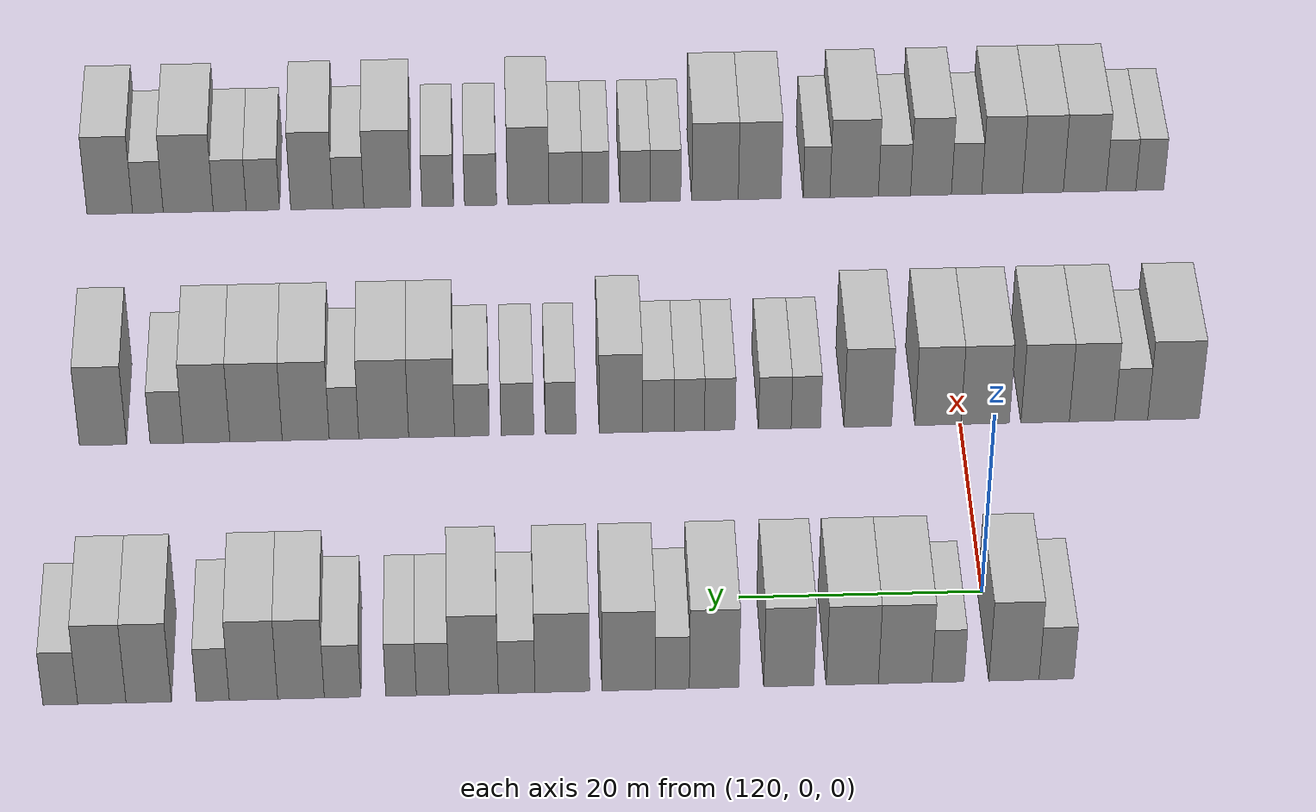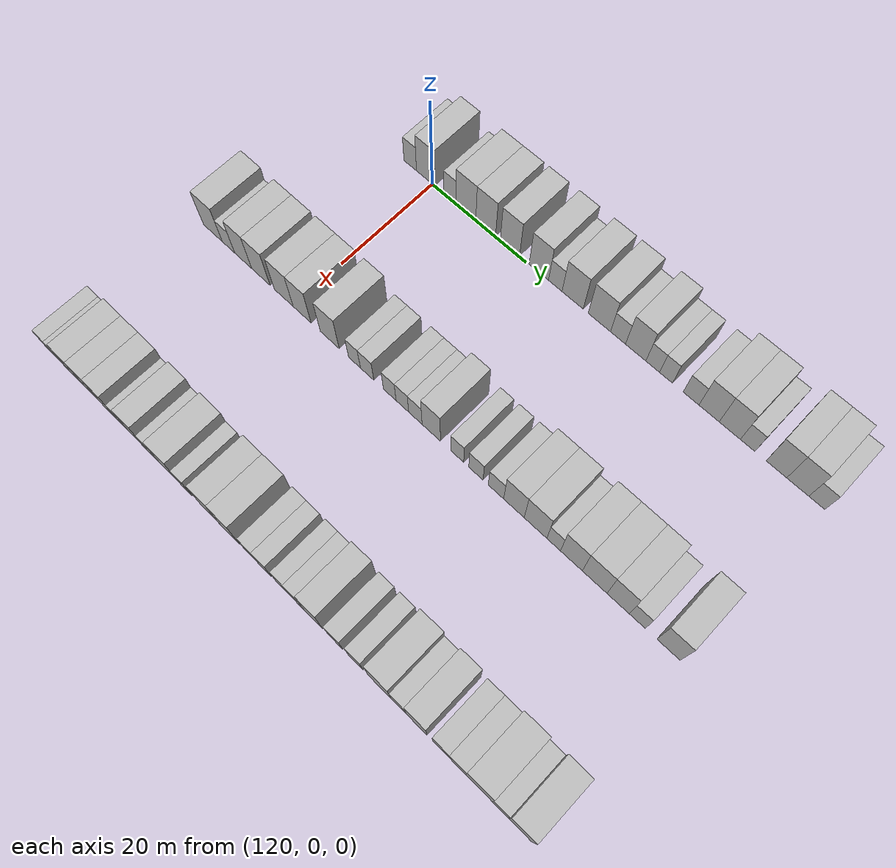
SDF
<sdf version="1.6">
 <world name="default">
  <model name="building_791">
   <static>1</static>
   <pose>115.0000 -5.0770 0 0.000000 0.000000 0.000000</pose>
   <link name="link">
    <pose>0 0 3.00 0 0 0</pose>
    <collision name="collision"><geometry><box><size>10.0000 2.8023 6.0000</size></box></geometry></collision>
    <visual name="visual">
     <cast_shadows>0</cast_shadows>
     <geometry><box><size>10.0000 2.8023 6.0000</size></box></geometry>
     <material>
      <script>
       <uri>model://HANNAS_wall/materials/scripts</uri>
       <uri>model://HANNAS_wall/materials/textures</uri>
       <name>vrc/HANNAS_wall</name>
      </script>
     </material>
    </visual>
   </link>
  </model>
  <model name="building_792">
   <static>1</static>
   <pose>115.0000 -1.6470 0 0.000000 0.000000 0.000000</pose>
   <link name="link">
    <pose>0 0 4.50 0 0 0</pose>
    <collision name="collision"><geometry><box><size>10.0000 4.0577 9.0000</size></box></geometry></collision>
    <visual name="visual">
     <cast_shadows>0</cast_shadows>
     <geometry><box><size>10.0000 4.0577 9.0000</size></box></geometry>
     <material>
      <script>
       <uri>model://HANNAS_wall/materials/scripts</uri>
       <uri>model://HANNAS_wall/materials/textures</uri>
       <name>vrc/HANNAS_wall</name>
      </script>
     </material>
    </visual>
   </link>
  </model>
  <model name="building_793">
   <static>1</static>
   <pose>115.0000 3.6811 0 0.000000 0.000000 0.000000</pose>
   <link name="link">
    <pose>0 0 3.00 0 0 0</pose>
    <collision name="collision"><geometry><box><size>10.0000 2.5985 6.0000</size></box></geometry></collision>
    <visual name="visual">
     <cast_shadows>0</cast_shadows>
     <geometry><box><size>10.0000 2.5985 6.0000</size></box></geometry>
     <material>
      <script>
       <uri>model://HANNAS_wall/materials/scripts</uri>
       <uri>model://HANNAS_wall/materials/textures</uri>
       <name>vrc/HANNAS_wall</name>
      </script>
     </material>
    </visual>
   </link>
  </model>
  <model name="building_794">
   <static>1</static>
   <pose>115.0000 7.1402 0 0.000000 0.000000 0.000000</pose>
   <link name="link">
    <pose>0 0 4.50 0 0 0</pose>
    <collision name="collision"><geometry><box><size>10.0000 4.3196 9.0000</size></box></geometry></collision>
    <visual name="visual">
     <cast_shadows>0</cast_shadows>
     <geometry><box><size>10.0000 4.3196 9.0000</size></box></geometry>
     <material>
      <script>
       <uri>model://HANNAS_wall/materials/scripts</uri>
       <uri>model://HANNAS_wall/materials/textures</uri>
       <name>vrc/HANNAS_wall</name>
      </script>
     </material>
    </visual>
   </link>
  </model>
  <model name="building_795">
   <static>1</static>
   <pose>115.0000 11.4047 0 0.000000 0.000000 0.000000</pose>
   <link name="link">
    <pose>0 0 4.50 0 0 0</pose>
    <collision name="collision"><geometry><box><size>10.0000 4.2093 9.0000</size></box></geometry></collision>
    <visual name="visual">
     <cast_shadows>0</cast_shadows>
     <geometry><box><size>10.0000 4.2093 9.0000</size></box></geometry>
     <material>
      <script>
       <uri>model://HANNAS_wall/materials/scripts</uri>
       <uri>model://HANNAS_wall/materials/textures</uri>
       <name>vrc/HANNAS_wall</name>
      </script>
     </material>
    </visual>
   </link>
  </model>
  <model name="building_796">
   <static>1</static>
   <pose>115.0000 16.5263 0 0.000000 0.000000 0.000000</pose>
   <link name="link">
    <pose>0 0 4.50 0 0 0</pose>
    <collision name="collision"><geometry><box><size>10.0000 4.0339 9.0000</size></box></geometry></collision>
    <visual name="visual">
     <cast_shadows>0</cast_shadows>
     <geometry><box><size>10.0000 4.0339 9.0000</size></box></geometry>
     <material>
      <script>
       <uri>model://HANNAS_wall/materials/scripts</uri>
       <uri>model://HANNAS_wall/materials/textures</uri>
       <name>vrc/HANNAS_wall</name>
      </script>
     </material>
    </visual>
   </link>
  </model>
  <model name="building_797">
   <static>1</static>
   <pose>115.0000 22.5402 0 0.000000 0.000000 0.000000</pose>
   <link name="link">
    <pose>0 0 4.50 0 0 0</pose>
    <collision name="collision"><geometry><box><size>10.0000 3.9940 9.0000</size></box></geometry></collision>
    <visual name="visual">
     <cast_shadows>0</cast_shadows>
     <geometry><box><size>10.0000 3.9940 9.0000</size></box></geometry>
     <material>
      <script>
       <uri>model://HANNAS_wall/materials/scripts</uri>
       <uri>model://HANNAS_wall/materials/textures</uri>
       <name>vrc/HANNAS_wall</name>
      </script>
     </material>
    </visual>
   </link>
  </model>
  <model name="building_798">
   <static>1</static>
   <pose>115.0000 25.9160 0 0.000000 0.000000 0.000000</pose>
   <link name="link">
    <pose>0 0 3.00 0 0 0</pose>
    <collision name="collision"><geometry><box><size>10.0000 2.7576 6.0000</size></box></geometry></collision>
    <visual name="visual">
     <cast_shadows>0</cast_shadows>
     <geometry><box><size>10.0000 2.7576 6.0000</size></box></geometry>
     <material>
      <script>
       <uri>model://HANNAS_wall/materials/scripts</uri>
       <uri>model://HANNAS_wall/materials/textures</uri>
       <name>vrc/HANNAS_wall</name>
      </script>
     </material>
    </visual>
   </link>
  </model>
  <model name="building_799">
   <static>1</static>
   <pose>115.0000 29.4288 0 0.000000 0.000000 0.000000</pose>
   <link name="link">
    <pose>0 0 4.50 0 0 0</pose>
    <collision name="collision"><geometry><box><size>10.0000 4.2680 9.0000</size></box></geometry></collision>
    <visual name="visual">
     <cast_shadows>0</cast_shadows>
     <geometry><box><size>10.0000 4.2680 9.0000</size></box></geometry>
     <material>
      <script>
       <uri>model://HANNAS_wall/materials/scripts</uri>
       <uri>model://HANNAS_wall/materials/textures</uri>
       <name>vrc/HANNAS_wall</name>
      </script>
     </material>
    </visual>
   </link>
  </model>
  <model name="building_800">
   <static>1</static>
   <pose>115.0000 34.7591 0 0.000000 0.000000 0.000000</pose>
   <link name="link">
    <pose>0 0 4.50 0 0 0</pose>
    <collision name="collision"><geometry><box><size>10.0000 4.3925 9.0000</size></box></geometry></collision>
    <visual name="visual">
     <cast_shadows>0</cast_shadows>
     <geometry><box><size>10.0000 4.3925 9.0000</size></box></geometry>
     <material>
      <script>
       <uri>model://HANNAS_wall/materials/scripts</uri>
       <uri>model://HANNAS_wall/materials/textures</uri>
       <name>vrc/HANNAS_wall</name>
      </script>
     </material>
    </visual>
   </link>
  </model>
  <model name="building_801">
   <static>1</static>
   <pose>115.0000 38.4257 0 0.000000 0.000000 0.000000</pose>
   <link name="link">
    <pose>0 0 3.00 0 0 0</pose>
    <collision name="collision"><geometry><box><size>10.0000 2.9408 6.0000</size></box></geometry></collision>
    <visual name="visual">
     <cast_shadows>0</cast_shadows>
     <geometry><box><size>10.0000 2.9408 6.0000</size></box></geometry>
     <material>
      <script>
       <uri>model://HANNAS_wall/materials/scripts</uri>
       <uri>model://HANNAS_wall/materials/textures</uri>
       <name>vrc/HANNAS_wall</name>
      </script>
     </material>
    </visual>
   </link>
  </model>
  <model name="building_802">
   <static>1</static>
   <pose>115.0000 41.8705 0 0.000000 0.000000 0.000000</pose>
   <link name="link">
    <pose>0 0 4.50 0 0 0</pose>
    <collision name="collision"><geometry><box><size>10.0000 3.9487 9.0000</size></box></geometry></collision>
    <visual name="visual">
     <cast_shadows>0</cast_shadows>
     <geometry><box><size>10.0000 3.9487 9.0000</size></box></geometry>
     <material>
      <script>
       <uri>model://HANNAS_wall/materials/scripts</uri>
       <uri>model://HANNAS_wall/materials/textures</uri>
       <name>vrc/HANNAS_wall</name>
      </script>
     </material>
    </visual>
   </link>
  </model>
  <model name="building_803">
   <static>1</static>
   <pose>115.0000 45.1600 0 0.000000 0.000000 0.000000</pose>
   <link name="link">
    <pose>0 0 3.00 0 0 0</pose>
    <collision name="collision"><geometry><box><size>10.0000 2.6303 6.0000</size></box></geometry></collision>
    <visual name="visual">
     <cast_shadows>0</cast_shadows>
     <geometry><box><size>10.0000 2.6303 6.0000</size></box></geometry>
     <material>
      <script>
       <uri>model://HANNAS_wall/materials/scripts</uri>
       <uri>model://HANNAS_wall/materials/textures</uri>
       <name>vrc/HANNAS_wall</name>
      </script>
     </material>
    </visual>
   </link>
  </model>
  <model name="building_804">
   <static>1</static>
   <pose>115.0000 47.7001 0 0.000000 0.000000 0.000000</pose>
   <link name="link">
    <pose>0 0 3.00 0 0 0</pose>
    <collision name="collision"><geometry><box><size>10.0000 2.4500 6.0000</size></box></geometry></collision>
    <visual name="visual">
     <cast_shadows>0</cast_shadows>
     <geometry><box><size>10.0000 2.4500 6.0000</size></box></geometry>
     <material>
      <script>
       <uri>model://HANNAS_wall/materials/scripts</uri>
       <uri>model://HANNAS_wall/materials/textures</uri>
       <name>vrc/HANNAS_wall</name>
      </script>
     </material>
    </visual>
   </link>
  </model>
  <model name="building_805">
   <static>1</static>
   <pose>115.0000 52.3946 0 0.000000 0.000000 0.000000</pose>
   <link name="link">
    <pose>0 0 3.00 0 0 0</pose>
    <collision name="collision"><geometry><box><size>10.0000 2.9389 6.0000</size></box></geometry></collision>
    <visual name="visual">
     <cast_shadows>0</cast_shadows>
     <geometry><box><size>10.0000 2.9389 6.0000</size></box></geometry>
     <material>
      <script>
       <uri>model://HANNAS_wall/materials/scripts</uri>
       <uri>model://HANNAS_wall/materials/textures</uri>
       <name>vrc/HANNAS_wall</name>
      </script>
     </material>
    </visual>
   </link>
  </model>
  <model name="building_806">
   <static>1</static>
   <pose>115.0000 55.7344 0 0.000000 0.000000 0.000000</pose>
   <link name="link">
    <pose>0 0 4.50 0 0 0</pose>
    <collision name="collision"><geometry><box><size>10.0000 3.7406 9.0000</size></box></geometry></collision>
    <visual name="visual">
     <cast_shadows>0</cast_shadows>
     <geometry><box><size>10.0000 3.7406 9.0000</size></box></geometry>
     <material>
      <script>
       <uri>model://HANNAS_wall/materials/scripts</uri>
       <uri>model://HANNAS_wall/materials/textures</uri>
       <name>vrc/HANNAS_wall</name>
      </script>
     </material>
    </visual>
   </link>
  </model>
  <model name="building_807">
   <static>1</static>
   <pose>115.0000 59.5400 0 0.000000 0.000000 0.000000</pose>
   <link name="link">
    <pose>0 0 4.50 0 0 0</pose>
    <collision name="collision"><geometry><box><size>10.0000 3.8705 9.0000</size></box></geometry></collision>
    <visual name="visual">
     <cast_shadows>0</cast_shadows>
     <geometry><box><size>10.0000 3.8705 9.0000</size></box></geometry>
     <material>
      <script>
       <uri>model://HANNAS_wall/materials/scripts</uri>
       <uri>model://HANNAS_wall/materials/textures</uri>
       <name>vrc/HANNAS_wall</name>
      </script>
     </material>
    </visual>
   </link>
  </model>
  <model name="building_808">
   <static>1</static>
   <pose>115.0000 62.7925 0 0.000000 0.000000 0.000000</pose>
   <link name="link">
    <pose>0 0 3.00 0 0 0</pose>
    <collision name="collision"><geometry><box><size>10.0000 2.6346 6.0000</size></box></geometry></collision>
    <visual name="visual">
     <cast_shadows>0</cast_shadows>
     <geometry><box><size>10.0000 2.6346 6.0000</size></box></geometry>
     <material>
      <script>
       <uri>model://HANNAS_wall/materials/scripts</uri>
       <uri>model://HANNAS_wall/materials/textures</uri>
       <name>vrc/HANNAS_wall</name>
      </script>
     </material>
    </visual>
   </link>
  </model>
  <model name="building_809">
   <static>1</static>
   <pose>115.0000 67.9265 0 0.000000 0.000000 0.000000</pose>
   <link name="link">
    <pose>0 0 4.50 0 0 0</pose>
    <collision name="collision"><geometry><box><size>10.0000 3.6334 9.0000</size></box></geometry></collision>
    <visual name="visual">
     <cast_shadows>0</cast_shadows>
     <geometry><box><size>10.0000 3.6334 9.0000</size></box></geometry>
     <material>
      <script>
       <uri>model://HANNAS_wall/materials/scripts</uri>
       <uri>model://HANNAS_wall/materials/textures</uri>
       <name>vrc/HANNAS_wall</name>
      </script>
     </material>
    </visual>
   </link>
  </model>
  <model name="building_810">
   <static>1</static>
   <pose>115.0000 71.6758 0 0.000000 0.000000 0.000000</pose>
   <link name="link">
    <pose>0 0 4.50 0 0 0</pose>
    <collision name="collision"><geometry><box><size>10.0000 3.8652 9.0000</size></box></geometry></collision>
    <visual name="visual">
     <cast_shadows>0</cast_shadows>
     <geometry><box><size>10.0000 3.8652 9.0000</size></box></geometry>
     <material>
      <script>
       <uri>model://HANNAS_wall/materials/scripts</uri>
       <uri>model://HANNAS_wall/materials/textures</uri>
       <name>vrc/HANNAS_wall</name>
      </script>
     </material>
    </visual>
   </link>
  </model>
  <model name="building_811">
   <static>1</static>
   <pose>115.0000 74.9963 0 0.000000 0.000000 0.000000</pose>
   <link name="link">
    <pose>0 0 3.00 0 0 0</pose>
    <collision name="collision"><geometry><box><size>10.0000 2.7758 6.0000</size></box></geometry></collision>
    <visual name="visual">
     <cast_shadows>0</cast_shadows>
     <geometry><box><size>10.0000 2.7758 6.0000</size></box></geometry>
     <material>
      <script>
       <uri>model://HANNAS_wall/materials/scripts</uri>
       <uri>model://HANNAS_wall/materials/textures</uri>
       <name>vrc/HANNAS_wall</name>
      </script>
     </material>
    </visual>
   </link>
  </model>
  <model name="building_1021">
   <static>1</static>
   <pose>145.0000 -18.2331 0 0.000000 0.000000 0.000000</pose>
   <link name="link">
    <pose>0 0 4.50 0 0 0</pose>
    <collision name="collision"><geometry><box><size>10.0000 4.4233 9.0000</size></box></geometry></collision>
    <visual name="visual">
     <cast_shadows>0</cast_shadows>
     <geometry><box><size>10.0000 4.4233 9.0000</size></box></geometry>
     <material>
      <script>
       <uri>model://HANNAS_wall/materials/scripts</uri>
       <uri>model://HANNAS_wall/materials/textures</uri>
       <name>vrc/HANNAS_wall</name>
      </script>
     </material>
    </visual>
   </link>
  </model>
  <model name="building_1022">
   <static>1</static>
   <pose>145.0000 -14.6008 0 0.000000 0.000000 0.000000</pose>
   <link name="link">
    <pose>0 0 3.00 0 0 0</pose>
    <collision name="collision"><geometry><box><size>10.0000 2.8412 6.0000</size></box></geometry></collision>
    <visual name="visual">
     <cast_shadows>0</cast_shadows>
     <geometry><box><size>10.0000 2.8412 6.0000</size></box></geometry>
     <material>
      <script>
       <uri>model://HANNAS_wall/materials/scripts</uri>
       <uri>model://HANNAS_wall/materials/textures</uri>
       <name>vrc/HANNAS_wall</name>
      </script>
     </material>
    </visual>
   </link>
  </model>
  <model name="building_1023">
   <static>1</static>
   <pose>145.0000 -11.2451 0 0.000000 0.000000 0.000000</pose>
   <link name="link">
    <pose>0 0 4.50 0 0 0</pose>
    <collision name="collision"><geometry><box><size>10.0000 3.8701 9.0000</size></box></geometry></collision>
    <visual name="visual">
     <cast_shadows>0</cast_shadows>
     <geometry><box><size>10.0000 3.8701 9.0000</size></box></geometry>
     <material>
      <script>
       <uri>model://HANNAS_wall/materials/scripts</uri>
       <uri>model://HANNAS_wall/materials/textures</uri>
       <name>vrc/HANNAS_wall</name>
      </script>
     </material>
    </visual>
   </link>
  </model>
  <model name="building_1024">
   <static>1</static>
   <pose>145.0000 -7.2359 0 0.000000 0.000000 0.000000</pose>
   <link name="link">
    <pose>0 0 4.50 0 0 0</pose>
    <collision name="collision"><geometry><box><size>10.0000 4.1483 9.0000</size></box></geometry></collision>
    <visual name="visual">
     <cast_shadows>0</cast_shadows>
     <geometry><box><size>10.0000 4.1483 9.0000</size></box></geometry>
     <material>
      <script>
       <uri>model://HANNAS_wall/materials/scripts</uri>
       <uri>model://HANNAS_wall/materials/textures</uri>
       <name>vrc/HANNAS_wall</name>
      </script>
     </material>
    </visual>
   </link>
  </model>
  <model name="building_1025">
   <static>1</static>
   <pose>145.0000 -2.0886 0 0.000000 0.000000 0.000000</pose>
   <link name="link">
    <pose>0 0 4.50 0 0 0</pose>
    <collision name="collision"><geometry><box><size>10.0000 4.1463 9.0000</size></box></geometry></collision>
    <visual name="visual">
     <cast_shadows>0</cast_shadows>
     <geometry><box><size>10.0000 4.1463 9.0000</size></box></geometry>
     <material>
      <script>
       <uri>model://HANNAS_wall/materials/scripts</uri>
       <uri>model://HANNAS_wall/materials/textures</uri>
       <name>vrc/HANNAS_wall</name>
      </script>
     </material>
    </visual>
   </link>
  </model>
  <model name="building_1026">
   <static>1</static>
   <pose>145.0000 1.9492 0 0.000000 0.000000 0.000000</pose>
   <link name="link">
    <pose>0 0 4.50 0 0 0</pose>
    <collision name="collision"><geometry><box><size>10.0000 3.9294 9.0000</size></box></geometry></collision>
    <visual name="visual">
     <cast_shadows>0</cast_shadows>
     <geometry><box><size>10.0000 3.9294 9.0000</size></box></geometry>
     <material>
      <script>
       <uri>model://HANNAS_wall/materials/scripts</uri>
       <uri>model://HANNAS_wall/materials/textures</uri>
       <name>vrc/HANNAS_wall</name>
      </script>
     </material>
    </visual>
   </link>
  </model>
  <model name="building_1027">
   <static>1</static>
   <pose>145.0000 7.9503 0 0.000000 0.000000 0.000000</pose>
   <link name="link">
    <pose>0 0 4.50 0 0 0</pose>
    <collision name="collision"><geometry><box><size>10.0000 4.0727 9.0000</size></box></geometry></collision>
    <visual name="visual">
     <cast_shadows>0</cast_shadows>
     <geometry><box><size>10.0000 4.0727 9.0000</size></box></geometry>
     <material>
      <script>
       <uri>model://HANNAS_wall/materials/scripts</uri>
       <uri>model://HANNAS_wall/materials/textures</uri>
       <name>vrc/HANNAS_wall</name>
      </script>
     </material>
    </visual>
   </link>
  </model>
  <model name="building_1028">
   <static>1</static>
   <pose>145.0000 13.2446 0 0.000000 0.000000 0.000000</pose>
   <link name="link">
    <pose>0 0 3.00 0 0 0</pose>
    <collision name="collision"><geometry><box><size>10.0000 2.5161 6.0000</size></box></geometry></collision>
    <visual name="visual">
     <cast_shadows>0</cast_shadows>
     <geometry><box><size>10.0000 2.5161 6.0000</size></box></geometry>
     <material>
      <script>
       <uri>model://HANNAS_wall/materials/scripts</uri>
       <uri>model://HANNAS_wall/materials/textures</uri>
       <name>vrc/HANNAS_wall</name>
      </script>
     </material>
    </visual>
   </link>
  </model>
  <model name="building_1029">
   <static>1</static>
   <pose>145.0000 15.9003 0 0.000000 0.000000 0.000000</pose>
   <link name="link">
    <pose>0 0 3.00 0 0 0</pose>
    <collision name="collision"><geometry><box><size>10.0000 2.7953 6.0000</size></box></geometry></collision>
    <visual name="visual">
     <cast_shadows>0</cast_shadows>
     <geometry><box><size>10.0000 2.7953 6.0000</size></box></geometry>
     <material>
      <script>
       <uri>model://HANNAS_wall/materials/scripts</uri>
       <uri>model://HANNAS_wall/materials/textures</uri>
       <name>vrc/HANNAS_wall</name>
      </script>
     </material>
    </visual>
   </link>
  </model>
  <model name="building_1030">
   <static>1</static>
   <pose>145.0000 20.6039 0 0.000000 0.000000 0.000000</pose>
   <link name="link">
    <pose>0 0 3.00 0 0 0</pose>
    <collision name="collision"><geometry><box><size>10.0000 2.6118 6.0000</size></box></geometry></collision>
    <visual name="visual">
     <cast_shadows>0</cast_shadows>
     <geometry><box><size>10.0000 2.6118 6.0000</size></box></geometry>
     <material>
      <script>
       <uri>model://HANNAS_wall/materials/scripts</uri>
       <uri>model://HANNAS_wall/materials/textures</uri>
       <name>vrc/HANNAS_wall</name>
      </script>
     </material>
    </visual>
   </link>
  </model>
  <model name="building_1031">
   <static>1</static>
   <pose>145.0000 23.1957 0 0.000000 0.000000 0.000000</pose>
   <link name="link">
    <pose>0 0 3.00 0 0 0</pose>
    <collision name="collision"><geometry><box><size>10.0000 2.5719 6.0000</size></box></geometry></collision>
    <visual name="visual">
     <cast_shadows>0</cast_shadows>
     <geometry><box><size>10.0000 2.5719 6.0000</size></box></geometry>
     <material>
      <script>
       <uri>model://HANNAS_wall/materials/scripts</uri>
       <uri>model://HANNAS_wall/materials/textures</uri>
       <name>vrc/HANNAS_wall</name>
      </script>
     </material>
    </visual>
   </link>
  </model>
  <model name="building_1032">
   <static>1</static>
   <pose>145.0000 25.8371 0 0.000000 0.000000 0.000000</pose>
   <link name="link">
    <pose>0 0 3.00 0 0 0</pose>
    <collision name="collision"><geometry><box><size>10.0000 2.7110 6.0000</size></box></geometry></collision>
    <visual name="visual">
     <cast_shadows>0</cast_shadows>
     <geometry><box><size>10.0000 2.7110 6.0000</size></box></geometry>
     <material>
      <script>
       <uri>model://HANNAS_wall/materials/scripts</uri>
       <uri>model://HANNAS_wall/materials/textures</uri>
       <name>vrc/HANNAS_wall</name>
      </script>
     </material>
    </visual>
   </link>
  </model>
  <model name="building_1033">
   <static>1</static>
   <pose>145.0000 29.0301 0 0.000000 0.000000 0.000000</pose>
   <link name="link">
    <pose>0 0 4.50 0 0 0</pose>
    <collision name="collision"><geometry><box><size>10.0000 3.6749 9.0000</size></box></geometry></collision>
    <visual name="visual">
     <cast_shadows>0</cast_shadows>
     <geometry><box><size>10.0000 3.6749 9.0000</size></box></geometry>
     <material>
      <script>
       <uri>model://HANNAS_wall/materials/scripts</uri>
       <uri>model://HANNAS_wall/materials/textures</uri>
       <name>vrc/HANNAS_wall</name>
      </script>
     </material>
    </visual>
   </link>
  </model>
  <model name="building_1034">
   <static>1</static>
   <pose>145.0000 34.1591 0 0.000000 0.000000 0.000000</pose>
   <link name="link">
    <pose>0 0 3.00 0 0 0</pose>
    <collision name="collision"><geometry><box><size>10.0000 2.5832 6.0000</size></box></geometry></collision>
    <visual name="visual">
     <cast_shadows>0</cast_shadows>
     <geometry><box><size>10.0000 2.5832 6.0000</size></box></geometry>
     <material>
      <script>
       <uri>model://HANNAS_wall/materials/scripts</uri>
       <uri>model://HANNAS_wall/materials/textures</uri>
       <name>vrc/HANNAS_wall</name>
      </script>
     </material>
    </visual>
   </link>
  </model>
  <model name="building_1035">
   <static>1</static>
   <pose>145.0000 37.8397 0 0.000000 0.000000 0.000000</pose>
   <link name="link">
    <pose>0 0 3.00 0 0 0</pose>
    <collision name="collision"><geometry><box><size>10.0000 2.7780 6.0000</size></box></geometry></collision>
    <visual name="visual">
     <cast_shadows>0</cast_shadows>
     <geometry><box><size>10.0000 2.7780 6.0000</size></box></geometry>
     <material>
      <script>
       <uri>model://HANNAS_wall/materials/scripts</uri>
       <uri>model://HANNAS_wall/materials/textures</uri>
       <name>vrc/HANNAS_wall</name>
      </script>
     </material>
    </visual>
   </link>
  </model>
  <model name="building_1036">
   <static>1</static>
   <pose>145.0000 41.7129 0 0.000000 0.000000 0.000000</pose>
   <link name="link">
    <pose>0 0 3.00 0 0 0</pose>
    <collision name="collision"><geometry><box><size>10.0000 2.9684 6.0000</size></box></geometry></collision>
    <visual name="visual">
     <cast_shadows>0</cast_shadows>
     <geometry><box><size>10.0000 2.9684 6.0000</size></box></geometry>
     <material>
      <script>
       <uri>model://HANNAS_wall/materials/scripts</uri>
       <uri>model://HANNAS_wall/materials/textures</uri>
       <name>vrc/HANNAS_wall</name>
      </script>
     </material>
    </visual>
   </link>
  </model>
  <model name="building_1037">
   <static>1</static>
   <pose>145.0000 45.1493 0 0.000000 0.000000 0.000000</pose>
   <link name="link">
    <pose>0 0 4.50 0 0 0</pose>
    <collision name="collision"><geometry><box><size>10.0000 3.9045 9.0000</size></box></geometry></collision>
    <visual name="visual">
     <cast_shadows>0</cast_shadows>
     <geometry><box><size>10.0000 3.9045 9.0000</size></box></geometry>
     <material>
      <script>
       <uri>model://HANNAS_wall/materials/scripts</uri>
       <uri>model://HANNAS_wall/materials/textures</uri>
       <name>vrc/HANNAS_wall</name>
      </script>
     </material>
    </visual>
   </link>
  </model>
  <model name="building_1038">
   <static>1</static>
   <pose>145.0000 49.2223 0 0.000000 0.000000 0.000000</pose>
   <link name="link">
    <pose>0 0 4.50 0 0 0</pose>
    <collision name="collision"><geometry><box><size>10.0000 4.2415 9.0000</size></box></geometry></collision>
    <visual name="visual">
     <cast_shadows>0</cast_shadows>
     <geometry><box><size>10.0000 4.2415 9.0000</size></box></geometry>
     <material>
      <script>
       <uri>model://HANNAS_wall/materials/scripts</uri>
       <uri>model://HANNAS_wall/materials/textures</uri>
       <name>vrc/HANNAS_wall</name>
      </script>
     </material>
    </visual>
   </link>
  </model>
  <model name="building_1039">
   <static>1</static>
   <pose>145.0000 52.6000 0 0.000000 0.000000 0.000000</pose>
   <link name="link">
    <pose>0 0 3.00 0 0 0</pose>
    <collision name="collision"><geometry><box><size>10.0000 2.5138 6.0000</size></box></geometry></collision>
    <visual name="visual">
     <cast_shadows>0</cast_shadows>
     <geometry><box><size>10.0000 2.5138 6.0000</size></box></geometry>
     <material>
      <script>
       <uri>model://HANNAS_wall/materials/scripts</uri>
       <uri>model://HANNAS_wall/materials/textures</uri>
       <name>vrc/HANNAS_wall</name>
      </script>
     </material>
    </visual>
   </link>
  </model>
  <model name="building_1040">
   <static>1</static>
   <pose>145.0000 55.8555 0 0.000000 0.000000 0.000000</pose>
   <link name="link">
    <pose>0 0 4.50 0 0 0</pose>
    <collision name="collision"><geometry><box><size>10.0000 3.9972 9.0000</size></box></geometry></collision>
    <visual name="visual">
     <cast_shadows>0</cast_shadows>
     <geometry><box><size>10.0000 3.9972 9.0000</size></box></geometry>
     <material>
      <script>
       <uri>model://HANNAS_wall/materials/scripts</uri>
       <uri>model://HANNAS_wall/materials/textures</uri>
       <name>vrc/HANNAS_wall</name>
      </script>
     </material>
    </visual>
   </link>
  </model>
  <model name="building_1041">
   <static>1</static>
   <pose>145.0000 60.0714 0 0.000000 0.000000 0.000000</pose>
   <link name="link">
    <pose>0 0 4.50 0 0 0</pose>
    <collision name="collision"><geometry><box><size>10.0000 4.4346 9.0000</size></box></geometry></collision>
    <visual name="visual">
     <cast_shadows>0</cast_shadows>
     <geometry><box><size>10.0000 4.4346 9.0000</size></box></geometry>
     <material>
      <script>
       <uri>model://HANNAS_wall/materials/scripts</uri>
       <uri>model://HANNAS_wall/materials/textures</uri>
       <name>vrc/HANNAS_wall</name>
      </script>
     </material>
    </visual>
   </link>
  </model>
  <model name="building_1042">
   <static>1</static>
   <pose>145.0000 64.2668 0 0.000000 0.000000 0.000000</pose>
   <link name="link">
    <pose>0 0 4.50 0 0 0</pose>
    <collision name="collision"><geometry><box><size>10.0000 3.9562 9.0000</size></box></geometry></collision>
    <visual name="visual">
     <cast_shadows>0</cast_shadows>
     <geometry><box><size>10.0000 3.9562 9.0000</size></box></geometry>
     <material>
      <script>
       <uri>model://HANNAS_wall/materials/scripts</uri>
       <uri>model://HANNAS_wall/materials/textures</uri>
       <name>vrc/HANNAS_wall</name>
      </script>
     </material>
    </visual>
   </link>
  </model>
  <model name="building_1043">
   <static>1</static>
   <pose>145.0000 67.6536 0 0.000000 0.000000 0.000000</pose>
   <link name="link">
    <pose>0 0 3.00 0 0 0</pose>
    <collision name="collision"><geometry><box><size>10.0000 2.8173 6.0000</size></box></geometry></collision>
    <visual name="visual">
     <cast_shadows>0</cast_shadows>
     <geometry><box><size>10.0000 2.8173 6.0000</size></box></geometry>
     <material>
      <script>
       <uri>model://HANNAS_wall/materials/scripts</uri>
       <uri>model://HANNAS_wall/materials/textures</uri>
       <name>vrc/HANNAS_wall</name>
      </script>
     </material>
    </visual>
   </link>
  </model>
  <model name="building_1044">
   <static>1</static>
   <pose>145.0000 73.0612 0 0.000000 0.000000 0.000000</pose>
   <link name="link">
    <pose>0 0 4.50 0 0 0</pose>
    <collision name="collision"><geometry><box><size>10.0000 3.9977 9.0000</size></box></geometry></collision>
    <visual name="visual">
     <cast_shadows>0</cast_shadows>
     <geometry><box><size>10.0000 3.9977 9.0000</size></box></geometry>
     <material>
      <script>
       <uri>model://HANNAS_wall/materials/scripts</uri>
       <uri>model://HANNAS_wall/materials/textures</uri>
       <name>vrc/HANNAS_wall</name>
      </script>
     </material>
    </visual>
   </link>
  </model>
  <model name="building_1253">
   <static>1</static>
   <pose>175.0000 -19.7694 0 0.000000 0.000000 0.000000</pose>
   <link name="link">
    <pose>0 0 3.00 0 0 0</pose>
    <collision name="collision"><geometry><box><size>10.0000 2.5350 6.0000</size></box></geometry></collision>
    <visual name="visual">
     <cast_shadows>0</cast_shadows>
     <geometry><box><size>10.0000 2.5350 6.0000</size></box></geometry>
     <material>
      <script>
       <uri>model://HANNAS_wall/materials/scripts</uri>
       <uri>model://HANNAS_wall/materials/textures</uri>
       <name>vrc/HANNAS_wall</name>
      </script>
     </material>
    </visual>
   </link>
  </model>
  <model name="building_1254">
   <static>1</static>
   <pose>175.0000 -17.1605 0 0.000000 0.000000 0.000000</pose>
   <link name="link">
    <pose>0 0 3.00 0 0 0</pose>
    <collision name="collision"><geometry><box><size>10.0000 2.6828 6.0000</size></box></geometry></collision>
    <visual name="visual">
     <cast_shadows>0</cast_shadows>
     <geometry><box><size>10.0000 2.6828 6.0000</size></box></geometry>
     <material>
      <script>
       <uri>model://HANNAS_wall/materials/scripts</uri>
       <uri>model://HANNAS_wall/materials/textures</uri>
       <name>vrc/HANNAS_wall</name>
      </script>
     </material>
    </visual>
   </link>
  </model>
  <model name="building_1255">
   <static>1</static>
   <pose>175.0000 -13.8801 0 0.000000 0.000000 0.000000</pose>
   <link name="link">
    <pose>0 0 4.50 0 0 0</pose>
    <collision name="collision"><geometry><box><size>10.0000 3.8781 9.0000</size></box></geometry></collision>
    <visual name="visual">
     <cast_shadows>0</cast_shadows>
     <geometry><box><size>10.0000 3.8781 9.0000</size></box></geometry>
     <material>
      <script>
       <uri>model://HANNAS_wall/materials/scripts</uri>
       <uri>model://HANNAS_wall/materials/textures</uri>
       <name>vrc/HANNAS_wall</name>
      </script>
     </material>
    </visual>
   </link>
  </model>
  <model name="building_1256">
   <static>1</static>
   <pose>175.0000 -10.0875 0 0.000000 0.000000 0.000000</pose>
   <link name="link">
    <pose>0 0 4.50 0 0 0</pose>
    <collision name="collision"><geometry><box><size>10.0000 3.7071 9.0000</size></box></geometry></collision>
    <visual name="visual">
     <cast_shadows>0</cast_shadows>
     <geometry><box><size>10.0000 3.7071 9.0000</size></box></geometry>
     <material>
      <script>
       <uri>model://HANNAS_wall/materials/scripts</uri>
       <uri>model://HANNAS_wall/materials/textures</uri>
       <name>vrc/HANNAS_wall</name>
      </script>
     </material>
    </visual>
   </link>
  </model>
  <model name="building_1257">
   <static>1</static>
   <pose>175.0000 -6.3944 0 0.000000 0.000000 0.000000</pose>
   <link name="link">
    <pose>0 0 4.50 0 0 0</pose>
    <collision name="collision"><geometry><box><size>10.0000 3.6791 9.0000</size></box></geometry></collision>
    <visual name="visual">
     <cast_shadows>0</cast_shadows>
     <geometry><box><size>10.0000 3.6791 9.0000</size></box></geometry>
     <material>
      <script>
       <uri>model://HANNAS_wall/materials/scripts</uri>
       <uri>model://HANNAS_wall/materials/textures</uri>
       <name>vrc/HANNAS_wall</name>
      </script>
     </material>
    </visual>
   </link>
  </model>
  <model name="building_1258">
   <static>1</static>
   <pose>175.0000 -3.1841 0 0.000000 0.000000 0.000000</pose>
   <link name="link">
    <pose>0 0 3.00 0 0 0</pose>
    <collision name="collision"><geometry><box><size>10.0000 2.7416 6.0000</size></box></geometry></collision>
    <visual name="visual">
     <cast_shadows>0</cast_shadows>
     <geometry><box><size>10.0000 2.7416 6.0000</size></box></geometry>
     <material>
      <script>
       <uri>model://HANNAS_wall/materials/scripts</uri>
       <uri>model://HANNAS_wall/materials/textures</uri>
       <name>vrc/HANNAS_wall</name>
      </script>
     </material>
    </visual>
   </link>
  </model>
  <model name="building_1259">
   <static>1</static>
   <pose>175.0000 0.0347 0 0.000000 0.000000 0.000000</pose>
   <link name="link">
    <pose>0 0 4.50 0 0 0</pose>
    <collision name="collision"><geometry><box><size>10.0000 3.6959 9.0000</size></box></geometry></collision>
    <visual name="visual">
     <cast_shadows>0</cast_shadows>
     <geometry><box><size>10.0000 3.6959 9.0000</size></box></geometry>
     <material>
      <script>
       <uri>model://HANNAS_wall/materials/scripts</uri>
       <uri>model://HANNAS_wall/materials/textures</uri>
       <name>vrc/HANNAS_wall</name>
      </script>
     </material>
    </visual>
   </link>
  </model>
  <model name="building_1260">
   <static>1</static>
   <pose>175.0000 3.3345 0 0.000000 0.000000 0.000000</pose>
   <link name="link">
    <pose>0 0 3.00 0 0 0</pose>
    <collision name="collision"><geometry><box><size>10.0000 2.9037 6.0000</size></box></geometry></collision>
    <visual name="visual">
     <cast_shadows>0</cast_shadows>
     <geometry><box><size>10.0000 2.9037 6.0000</size></box></geometry>
     <material>
      <script>
       <uri>model://HANNAS_wall/materials/scripts</uri>
       <uri>model://HANNAS_wall/materials/textures</uri>
       <name>vrc/HANNAS_wall</name>
      </script>
     </material>
    </visual>
   </link>
  </model>
  <model name="building_1261">
   <static>1</static>
   <pose>175.0000 6.9733 0 0.000000 0.000000 0.000000</pose>
   <link name="link">
    <pose>0 0 4.50 0 0 0</pose>
    <collision name="collision"><geometry><box><size>10.0000 4.3740 9.0000</size></box></geometry></collision>
    <visual name="visual">
     <cast_shadows>0</cast_shadows>
     <geometry><box><size>10.0000 4.3740 9.0000</size></box></geometry>
     <material>
      <script>
       <uri>model://HANNAS_wall/materials/scripts</uri>
       <uri>model://HANNAS_wall/materials/textures</uri>
       <name>vrc/HANNAS_wall</name>
      </script>
     </material>
    </visual>
   </link>
  </model>
  <model name="building_1262">
   <static>1</static>
   <pose>175.0000 10.3684 0 0.000000 0.000000 0.000000</pose>
   <link name="link">
    <pose>0 0 3.00 0 0 0</pose>
    <collision name="collision"><geometry><box><size>10.0000 2.4162 6.0000</size></box></geometry></collision>
    <visual name="visual">
     <cast_shadows>0</cast_shadows>
     <geometry><box><size>10.0000 2.4162 6.0000</size></box></geometry>
     <material>
      <script>
       <uri>model://HANNAS_wall/materials/scripts</uri>
       <uri>model://HANNAS_wall/materials/textures</uri>
       <name>vrc/HANNAS_wall</name>
      </script>
     </material>
    </visual>
   </link>
  </model>
  <model name="building_1263">
   <static>1</static>
   <pose>175.0000 15.5051 0 0.000000 0.000000 0.000000</pose>
   <link name="link">
    <pose>0 0 4.50 0 0 0</pose>
    <collision name="collision"><geometry><box><size>10.0000 3.8571 9.0000</size></box></geometry></collision>
    <visual name="visual">
     <cast_shadows>0</cast_shadows>
     <geometry><box><size>10.0000 3.8571 9.0000</size></box></geometry>
     <material>
      <script>
       <uri>model://HANNAS_wall/materials/scripts</uri>
       <uri>model://HANNAS_wall/materials/textures</uri>
       <name>vrc/HANNAS_wall</name>
      </script>
     </material>
    </visual>
   </link>
  </model>
  <model name="building_1264">
   <static>1</static>
   <pose>175.0000 19.5300 0 0.000000 0.000000 0.000000</pose>
   <link name="link">
    <pose>0 0 4.50 0 0 0</pose>
    <collision name="collision"><geometry><box><size>10.0000 4.1928 9.0000</size></box></geometry></collision>
    <visual name="visual">
     <cast_shadows>0</cast_shadows>
     <geometry><box><size>10.0000 4.1928 9.0000</size></box></geometry>
     <material>
      <script>
       <uri>model://HANNAS_wall/materials/scripts</uri>
       <uri>model://HANNAS_wall/materials/textures</uri>
       <name>vrc/HANNAS_wall</name>
      </script>
     </material>
    </visual>
   </link>
  </model>
  <model name="building_1265">
   <static>1</static>
   <pose>175.0000 24.0101 0 0.000000 0.000000 0.000000</pose>
   <link name="link">
    <pose>0 0 3.00 0 0 0</pose>
    <collision name="collision"><geometry><box><size>10.0000 2.7672 6.0000</size></box></geometry></collision>
    <visual name="visual">
     <cast_shadows>0</cast_shadows>
     <geometry><box><size>10.0000 2.7672 6.0000</size></box></geometry>
     <material>
      <script>
       <uri>model://HANNAS_wall/materials/scripts</uri>
       <uri>model://HANNAS_wall/materials/textures</uri>
       <name>vrc/HANNAS_wall</name>
      </script>
     </material>
    </visual>
   </link>
  </model>
  <model name="building_1266">
   <static>1</static>
   <pose>175.0000 26.7370 0 0.000000 0.000000 0.000000</pose>
   <link name="link">
    <pose>0 0 3.00 0 0 0</pose>
    <collision name="collision"><geometry><box><size>10.0000 2.6866 6.0000</size></box></geometry></collision>
    <visual name="visual">
     <cast_shadows>0</cast_shadows>
     <geometry><box><size>10.0000 2.6866 6.0000</size></box></geometry>
     <material>
      <script>
       <uri>model://HANNAS_wall/materials/scripts</uri>
       <uri>model://HANNAS_wall/materials/textures</uri>
       <name>vrc/HANNAS_wall</name>
      </script>
     </material>
    </visual>
   </link>
  </model>
  <model name="building_1267">
   <static>1</static>
   <pose>175.0000 30.2905 0 0.000000 0.000000 0.000000</pose>
   <link name="link">
    <pose>0 0 3.00 0 0 0</pose>
    <collision name="collision"><geometry><box><size>10.0000 2.4204 6.0000</size></box></geometry></collision>
    <visual name="visual">
     <cast_shadows>0</cast_shadows>
     <geometry><box><size>10.0000 2.4204 6.0000</size></box></geometry>
     <material>
      <script>
       <uri>model://HANNAS_wall/materials/scripts</uri>
       <uri>model://HANNAS_wall/materials/textures</uri>
       <name>vrc/HANNAS_wall</name>
      </script>
     </material>
    </visual>
   </link>
  </model>
  <model name="building_1268">
   <static>1</static>
   <pose>175.0000 32.9955 0 0.000000 0.000000 0.000000</pose>
   <link name="link">
    <pose>0 0 3.00 0 0 0</pose>
    <collision name="collision"><geometry><box><size>10.0000 2.9897 6.0000</size></box></geometry></collision>
    <visual name="visual">
     <cast_shadows>0</cast_shadows>
     <geometry><box><size>10.0000 2.9897 6.0000</size></box></geometry>
     <material>
      <script>
       <uri>model://HANNAS_wall/materials/scripts</uri>
       <uri>model://HANNAS_wall/materials/textures</uri>
       <name>vrc/HANNAS_wall</name>
      </script>
     </material>
    </visual>
   </link>
  </model>
  <model name="building_1269">
   <static>1</static>
   <pose>175.0000 36.3472 0 0.000000 0.000000 0.000000</pose>
   <link name="link">
    <pose>0 0 4.50 0 0 0</pose>
    <collision name="collision"><geometry><box><size>10.0000 3.7137 9.0000</size></box></geometry></collision>
    <visual name="visual">
     <cast_shadows>0</cast_shadows>
     <geometry><box><size>10.0000 3.7137 9.0000</size></box></geometry>
     <material>
      <script>
       <uri>model://HANNAS_wall/materials/scripts</uri>
       <uri>model://HANNAS_wall/materials/textures</uri>
       <name>vrc/HANNAS_wall</name>
      </script>
     </material>
    </visual>
   </link>
  </model>
  <model name="building_1270">
   <static>1</static>
   <pose>175.0000 40.6425 0 0.000000 0.000000 0.000000</pose>
   <link name="link">
    <pose>0 0 3.00 0 0 0</pose>
    <collision name="collision"><geometry><box><size>10.0000 2.8769 6.0000</size></box></geometry></collision>
    <visual name="visual">
     <cast_shadows>0</cast_shadows>
     <geometry><box><size>10.0000 2.8769 6.0000</size></box></geometry>
     <material>
      <script>
       <uri>model://HANNAS_wall/materials/scripts</uri>
       <uri>model://HANNAS_wall/materials/textures</uri>
       <name>vrc/HANNAS_wall</name>
      </script>
     </material>
    </visual>
   </link>
  </model>
  <model name="building_1271">
   <static>1</static>
   <pose>175.0000 44.4961 0 0.000000 0.000000 0.000000</pose>
   <link name="link">
    <pose>0 0 3.00 0 0 0</pose>
    <collision name="collision"><geometry><box><size>10.0000 2.8303 6.0000</size></box></geometry></collision>
    <visual name="visual">
     <cast_shadows>0</cast_shadows>
     <geometry><box><size>10.0000 2.8303 6.0000</size></box></geometry>
     <material>
      <script>
       <uri>model://HANNAS_wall/materials/scripts</uri>
       <uri>model://HANNAS_wall/materials/textures</uri>
       <name>vrc/HANNAS_wall</name>
      </script>
     </material>
    </visual>
   </link>
  </model>
  <model name="building_1272">
   <static>1</static>
   <pose>175.0000 49.0241 0 0.000000 0.000000 0.000000</pose>
   <link name="link">
    <pose>0 0 4.50 0 0 0</pose>
    <collision name="collision"><geometry><box><size>10.0000 4.2258 9.0000</size></box></geometry></collision>
    <visual name="visual">
     <cast_shadows>0</cast_shadows>
     <geometry><box><size>10.0000 4.2258 9.0000</size></box></geometry>
     <material>
      <script>
       <uri>model://HANNAS_wall/materials/scripts</uri>
       <uri>model://HANNAS_wall/materials/textures</uri>
       <name>vrc/HANNAS_wall</name>
      </script>
     </material>
    </visual>
   </link>
  </model>
  <model name="building_1273">
   <static>1</static>
   <pose>175.0000 52.5311 0 0.000000 0.000000 0.000000</pose>
   <link name="link">
    <pose>0 0 3.00 0 0 0</pose>
    <collision name="collision"><geometry><box><size>10.0000 2.7881 6.0000</size></box></geometry></collision>
    <visual name="visual">
     <cast_shadows>0</cast_shadows>
     <geometry><box><size>10.0000 2.7881 6.0000</size></box></geometry>
     <material>
      <script>
       <uri>model://HANNAS_wall/materials/scripts</uri>
       <uri>model://HANNAS_wall/materials/textures</uri>
       <name>vrc/HANNAS_wall</name>
      </script>
     </material>
    </visual>
   </link>
  </model>
  <model name="building_1274">
   <static>1</static>
   <pose>175.0000 55.8142 0 0.000000 0.000000 0.000000</pose>
   <link name="link">
    <pose>0 0 4.50 0 0 0</pose>
    <collision name="collision"><geometry><box><size>10.0000 3.7781 9.0000</size></box></geometry></collision>
    <visual name="visual">
     <cast_shadows>0</cast_shadows>
     <geometry><box><size>10.0000 3.7781 9.0000</size></box></geometry>
     <material>
      <script>
       <uri>model://HANNAS_wall/materials/scripts</uri>
       <uri>model://HANNAS_wall/materials/textures</uri>
       <name>vrc/HANNAS_wall</name>
      </script>
     </material>
    </visual>
   </link>
  </model>
  <model name="building_1275">
   <static>1</static>
   <pose>175.0000 60.1981 0 0.000000 0.000000 0.000000</pose>
   <link name="link">
    <pose>0 0 3.00 0 0 0</pose>
    <collision name="collision"><geometry><box><size>10.0000 2.9898 6.0000</size></box></geometry></collision>
    <visual name="visual">
     <cast_shadows>0</cast_shadows>
     <geometry><box><size>10.0000 2.9898 6.0000</size></box></geometry>
     <material>
      <script>
       <uri>model://HANNAS_wall/materials/scripts</uri>
       <uri>model://HANNAS_wall/materials/textures</uri>
       <name>vrc/HANNAS_wall</name>
      </script>
     </material>
    </visual>
   </link>
  </model>
  <model name="building_1276">
   <static>1</static>
   <pose>175.0000 63.1739 0 0.000000 0.000000 0.000000</pose>
   <link name="link">
    <pose>0 0 3.00 0 0 0</pose>
    <collision name="collision"><geometry><box><size>10.0000 2.9618 6.0000</size></box></geometry></collision>
    <visual name="visual">
     <cast_shadows>0</cast_shadows>
     <geometry><box><size>10.0000 2.9618 6.0000</size></box></geometry>
     <material>
      <script>
       <uri>model://HANNAS_wall/materials/scripts</uri>
       <uri>model://HANNAS_wall/materials/textures</uri>
       <name>vrc/HANNAS_wall</name>
      </script>
     </material>
    </visual>
   </link>
  </model>
  <model name="building_1277">
   <static>1</static>
   <pose>175.0000 66.8962 0 0.000000 0.000000 0.000000</pose>
   <link name="link">
    <pose>0 0 4.50 0 0 0</pose>
    <collision name="collision"><geometry><box><size>10.0000 4.4827 9.0000</size></box></geometry></collision>
    <visual name="visual">
     <cast_shadows>0</cast_shadows>
     <geometry><box><size>10.0000 4.4827 9.0000</size></box></geometry>
     <material>
      <script>
       <uri>model://HANNAS_wall/materials/scripts</uri>
       <uri>model://HANNAS_wall/materials/textures</uri>
       <name>vrc/HANNAS_wall</name>
      </script>
     </material>
    </visual>
   </link>
  </model>
  <model name="building_1278">
   <static>1</static>
   <pose>175.0000 70.5109 0 0.000000 0.000000 0.000000</pose>
   <link name="link">
    <pose>0 0 3.00 0 0 0</pose>
    <collision name="collision"><geometry><box><size>10.0000 2.7467 6.0000</size></box></geometry></collision>
    <visual name="visual">
     <cast_shadows>0</cast_shadows>
     <geometry><box><size>10.0000 2.7467 6.0000</size></box></geometry>
     <material>
      <script>
       <uri>model://HANNAS_wall/materials/scripts</uri>
       <uri>model://HANNAS_wall/materials/textures</uri>
       <name>vrc/HANNAS_wall</name>
      </script>
     </material>
    </visual>
   </link>
  </model>
  <model name="building_1279">
   <static>1</static>
   <pose>175.0000 73.9270 0 0.000000 0.000000 0.000000</pose>
   <link name="link">
    <pose>0 0 4.50 0 0 0</pose>
    <collision name="collision"><geometry><box><size>10.0000 4.0855 9.0000</size></box></geometry></collision>
    <visual name="visual">
     <cast_shadows>0</cast_shadows>
     <geometry><box><size>10.0000 4.0855 9.0000</size></box></geometry>
     <material>
      <script>
       <uri>model://HANNAS_wall/materials/scripts</uri>
       <uri>model://HANNAS_wall/materials/textures</uri>
       <name>vrc/HANNAS_wall</name>
      </script>
     </material>
    </visual>
   </link>
  </model>
 </world>
</sdf>
